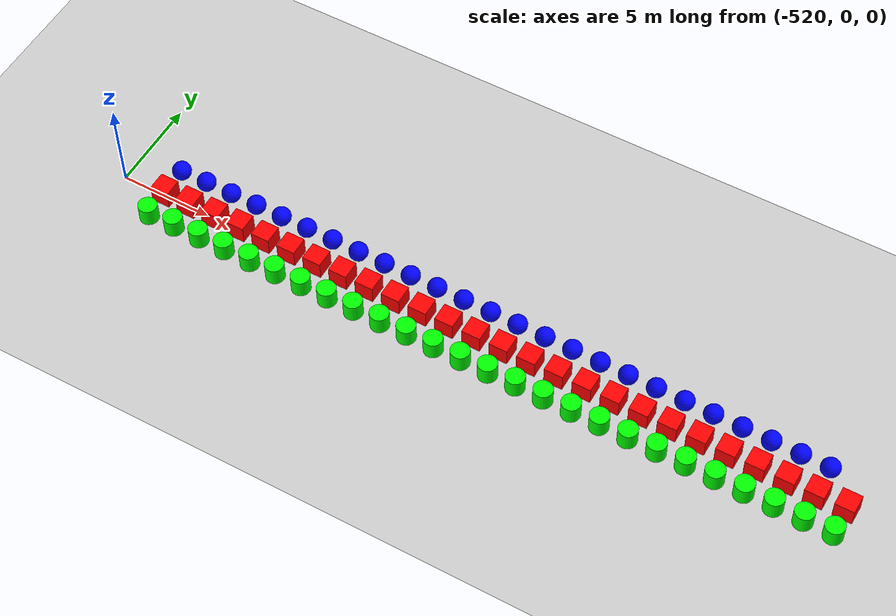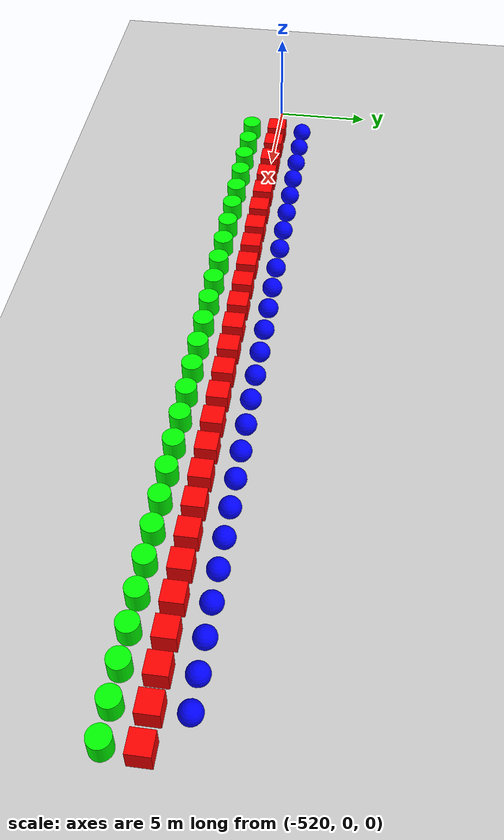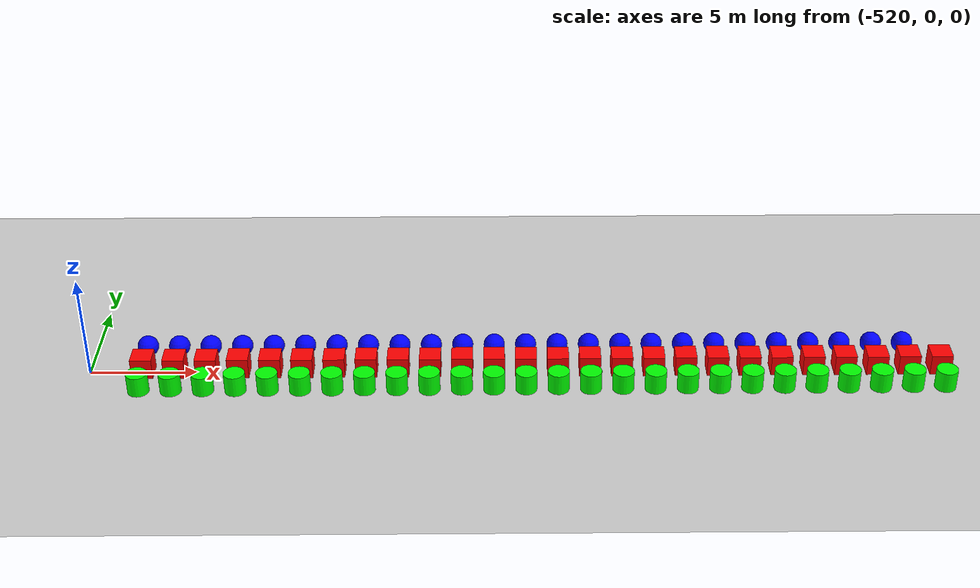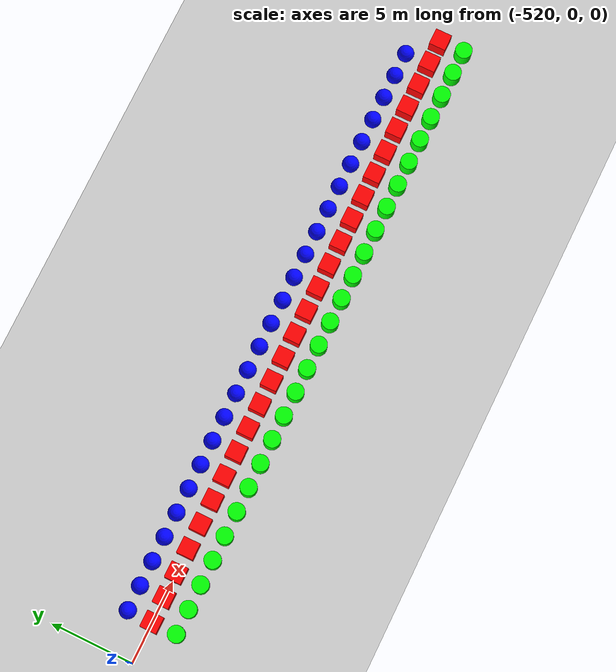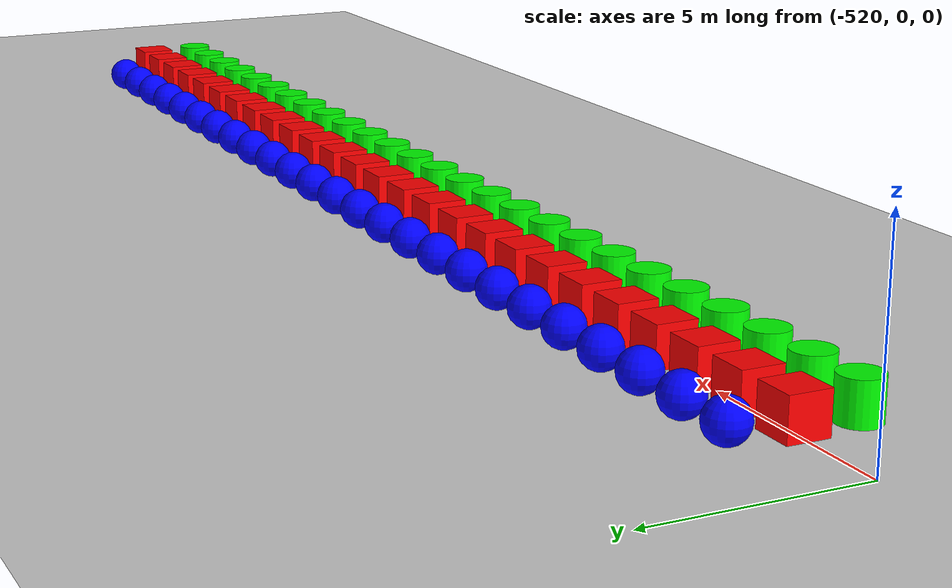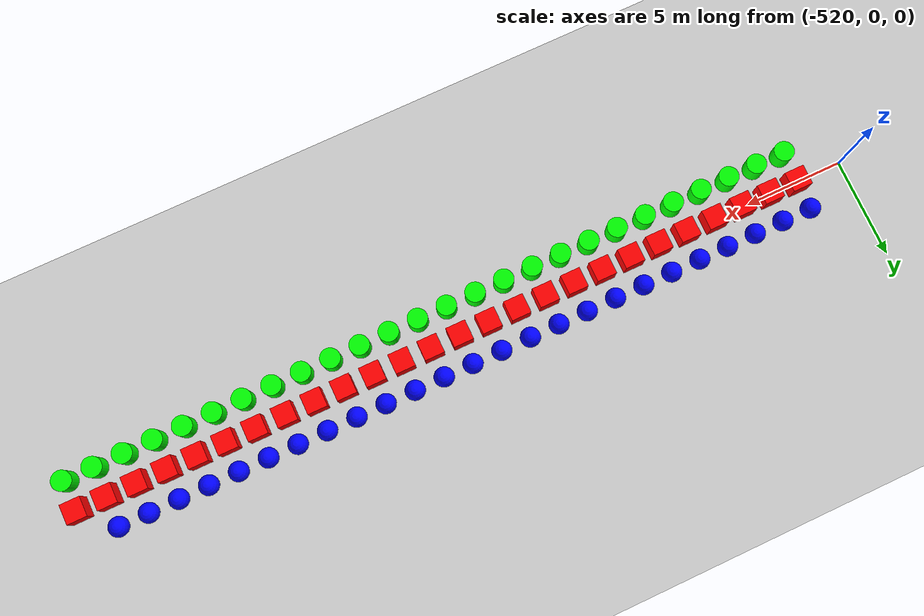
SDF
<sdf version="1.6">
 <world name="shapes">
  <model name="ground_plane">
   <static>true</static>
   <link name="link">
    <collision name="collision">
     <geometry><plane><normal>0 0 1</normal><size>100 100</size></plane></geometry>
    </collision>
    <visual name="visual">
     <geometry><plane><normal>0 0 1</normal><size>100 100</size></plane></geometry>
     <material>
      <ambient>0.8 0.8 0.8 1</ambient>
      <diffuse>0.8 0.8 0.8 1</diffuse>
      <specular>0.8 0.8 0.8 1</specular>
     </material>
    </visual>
   </link>
  </model>
  <model name="box_155">
   <static>false</static>
   <pose>-517.5 0 0.5 0 0 0</pose>
   <link name="box_link">
    <inertial>
     <inertia><ixx>1</ixx><ixy>0</ixy><ixz>0</ixz><iyy>1</iyy><iyz>0</iyz><izz>1</izz></inertia>
     <mass>1.0</mass>
    </inertial>
    <collision name="box_collision"><geometry><box><size>1 1 1</size></box></geometry></collision>
    <visual name="box_visual">
     <geometry><box><size>1 1 1</size></box></geometry>
     <material><ambient>1 0 0 1</ambient><diffuse>1 0 0 1</diffuse><specular>1 0 0 1</specular></material>
    </visual>
   </link>
  </model>
  <model name="cylinder_155">
   <static>false</static>
   <pose>-517.5 -1.5 0.5 0 0 0</pose>
   <link name="cylinder_link">
    <inertial>
     <inertia><ixx>2</ixx><ixy>0</ixy><ixz>0</ixz><iyy>2</iyy><iyz>0</iyz><izz>2</izz></inertia>
     <mass>2.0</mass>
    </inertial>
    <collision name="cylinder_collision">
     <geometry><cylinder><radius>0.5</radius><length>1.0</length></cylinder></geometry>
    </collision>
    <visual name="cylinder_visual">
     <geometry><cylinder><radius>0.5</radius><length>1.0</length></cylinder></geometry>
     <material><ambient>0 1 0 1</ambient><diffuse>0 1 0 1</diffuse><specular>0 1 0 1</specular></material>
    </visual>
   </link>
  </model>
  <model name="sphere_155">
   <static>false</static>
   <pose>-517.5 1.5 0.5 0 0 0</pose>
   <link name="sphere_link">
    <inertial>
     <inertia><ixx>3</ixx><ixy>0</ixy><ixz>0</ixz><iyy>3</iyy><iyz>0</iyz><izz>3</izz></inertia>
     <mass>3.0</mass>
    </inertial>
    <collision name="sphere_collision"><geometry><sphere><radius>0.5</radius></sphere></geometry></collision>
    <visual name="sphere_visual">
     <geometry><sphere><radius>0.5</radius></sphere></geometry>
     <material><ambient>0 0 1 1</ambient><diffuse>0 0 1 1</diffuse><specular>0 0 1 1</specular></material>
    </visual>
   </link>
  </model>
  <model name="box_156">
   <static>false</static>
   <pose>-516.0 0 0.5 0 0 0</pose>
   <link name="box_link">
    <inertial>
     <inertia><ixx>1</ixx><ixy>0</ixy><ixz>0</ixz><iyy>1</iyy><iyz>0</iyz><izz>1</izz></inertia>
     <mass>1.0</mass>
    </inertial>
    <collision name="box_collision"><geometry><box><size>1 1 1</size></box></geometry></collision>
    <visual name="box_visual">
     <geometry><box><size>1 1 1</size></box></geometry>
     <material><ambient>1 0 0 1</ambient><diffuse>1 0 0 1</diffuse><specular>1 0 0 1</specular></material>
    </visual>
   </link>
  </model>
  <model name="cylinder_156">
   <static>false</static>
   <pose>-516.0 -1.5 0.5 0 0 0</pose>
   <link name="cylinder_link">
    <inertial>
     <inertia><ixx>2</ixx><ixy>0</ixy><ixz>0</ixz><iyy>2</iyy><iyz>0</iyz><izz>2</izz></inertia>
     <mass>2.0</mass>
    </inertial>
    <collision name="cylinder_collision">
     <geometry><cylinder><radius>0.5</radius><length>1.0</length></cylinder></geometry>
    </collision>
    <visual name="cylinder_visual">
     <geometry><cylinder><radius>0.5</radius><length>1.0</length></cylinder></geometry>
     <material><ambient>0 1 0 1</ambient><diffuse>0 1 0 1</diffuse><specular>0 1 0 1</specular></material>
    </visual>
   </link>
  </model>
  <model name="sphere_156">
   <static>false</static>
   <pose>-516.0 1.5 0.5 0 0 0</pose>
   <link name="sphere_link">
    <inertial>
     <inertia><ixx>3</ixx><ixy>0</ixy><ixz>0</ixz><iyy>3</iyy><iyz>0</iyz><izz>3</izz></inertia>
     <mass>3.0</mass>
    </inertial>
    <collision name="sphere_collision"><geometry><sphere><radius>0.5</radius></sphere></geometry></collision>
    <visual name="sphere_visual">
     <geometry><sphere><radius>0.5</radius></sphere></geometry>
     <material><ambient>0 0 1 1</ambient><diffuse>0 0 1 1</diffuse><specular>0 0 1 1</specular></material>
    </visual>
   </link>
  </model>
  <model name="box_157">
   <static>false</static>
   <pose>-514.5 0 0.5 0 0 0</pose>
   <link name="box_link">
    <inertial>
     <inertia><ixx>1</ixx><ixy>0</ixy><ixz>0</ixz><iyy>1</iyy><iyz>0</iyz><izz>1</izz></inertia>
     <mass>1.0</mass>
    </inertial>
    <collision name="box_collision"><geometry><box><size>1 1 1</size></box></geometry></collision>
    <visual name="box_visual">
     <geometry><box><size>1 1 1</size></box></geometry>
     <material><ambient>1 0 0 1</ambient><diffuse>1 0 0 1</diffuse><specular>1 0 0 1</specular></material>
    </visual>
   </link>
  </model>
  <model name="cylinder_157">
   <static>false</static>
   <pose>-514.5 -1.5 0.5 0 0 0</pose>
   <link name="cylinder_link">
    <inertial>
     <inertia><ixx>2</ixx><ixy>0</ixy><ixz>0</ixz><iyy>2</iyy><iyz>0</iyz><izz>2</izz></inertia>
     <mass>2.0</mass>
    </inertial>
    <collision name="cylinder_collision">
     <geometry><cylinder><radius>0.5</radius><length>1.0</length></cylinder></geometry>
    </collision>
    <visual name="cylinder_visual">
     <geometry><cylinder><radius>0.5</radius><length>1.0</length></cylinder></geometry>
     <material><ambient>0 1 0 1</ambient><diffuse>0 1 0 1</diffuse><specular>0 1 0 1</specular></material>
    </visual>
   </link>
  </model>
  <model name="sphere_157">
   <static>false</static>
   <pose>-514.5 1.5 0.5 0 0 0</pose>
   <link name="sphere_link">
    <inertial>
     <inertia><ixx>3</ixx><ixy>0</ixy><ixz>0</ixz><iyy>3</iyy><iyz>0</iyz><izz>3</izz></inertia>
     <mass>3.0</mass>
    </inertial>
    <collision name="sphere_collision"><geometry><sphere><radius>0.5</radius></sphere></geometry></collision>
    <visual name="sphere_visual">
     <geometry><sphere><radius>0.5</radius></sphere></geometry>
     <material><ambient>0 0 1 1</ambient><diffuse>0 0 1 1</diffuse><specular>0 0 1 1</specular></material>
    </visual>
   </link>
  </model>
  <model name="box_158">
   <static>false</static>
   <pose>-513.0 0 0.5 0 0 0</pose>
   <link name="box_link">
    <inertial>
     <inertia><ixx>1</ixx><ixy>0</ixy><ixz>0</ixz><iyy>1</iyy><iyz>0</iyz><izz>1</izz></inertia>
     <mass>1.0</mass>
    </inertial>
    <collision name="box_collision"><geometry><box><size>1 1 1</size></box></geometry></collision>
    <visual name="box_visual">
     <geometry><box><size>1 1 1</size></box></geometry>
     <material><ambient>1 0 0 1</ambient><diffuse>1 0 0 1</diffuse><specular>1 0 0 1</specular></material>
    </visual>
   </link>
  </model>
  <model name="cylinder_158">
   <static>false</static>
   <pose>-513.0 -1.5 0.5 0 0 0</pose>
   <link name="cylinder_link">
    <inertial>
     <inertia><ixx>2</ixx><ixy>0</ixy><ixz>0</ixz><iyy>2</iyy><iyz>0</iyz><izz>2</izz></inertia>
     <mass>2.0</mass>
    </inertial>
    <collision name="cylinder_collision">
     <geometry><cylinder><radius>0.5</radius><length>1.0</length></cylinder></geometry>
    </collision>
    <visual name="cylinder_visual">
     <geometry><cylinder><radius>0.5</radius><length>1.0</length></cylinder></geometry>
     <material><ambient>0 1 0 1</ambient><diffuse>0 1 0 1</diffuse><specular>0 1 0 1</specular></material>
    </visual>
   </link>
  </model>
  <model name="sphere_158">
   <static>false</static>
   <pose>-513.0 1.5 0.5 0 0 0</pose>
   <link name="sphere_link">
    <inertial>
     <inertia><ixx>3</ixx><ixy>0</ixy><ixz>0</ixz><iyy>3</iyy><iyz>0</iyz><izz>3</izz></inertia>
     <mass>3.0</mass>
    </inertial>
    <collision name="sphere_collision"><geometry><sphere><radius>0.5</radius></sphere></geometry></collision>
    <visual name="sphere_visual">
     <geometry><sphere><radius>0.5</radius></sphere></geometry>
     <material><ambient>0 0 1 1</ambient><diffuse>0 0 1 1</diffuse><specular>0 0 1 1</specular></material>
    </visual>
   </link>
  </model>
  <model name="box_159">
   <static>false</static>
   <pose>-511.5 0 0.5 0 0 0</pose>
   <link name="box_link">
    <inertial>
     <inertia><ixx>1</ixx><ixy>0</ixy><ixz>0</ixz><iyy>1</iyy><iyz>0</iyz><izz>1</izz></inertia>
     <mass>1.0</mass>
    </inertial>
    <collision name="box_collision"><geometry><box><size>1 1 1</size></box></geometry></collision>
    <visual name="box_visual">
     <geometry><box><size>1 1 1</size></box></geometry>
     <material><ambient>1 0 0 1</ambient><diffuse>1 0 0 1</diffuse><specular>1 0 0 1</specular></material>
    </visual>
   </link>
  </model>
  <model name="cylinder_159">
   <static>false</static>
   <pose>-511.5 -1.5 0.5 0 0 0</pose>
   <link name="cylinder_link">
    <inertial>
     <inertia><ixx>2</ixx><ixy>0</ixy><ixz>0</ixz><iyy>2</iyy><iyz>0</iyz><izz>2</izz></inertia>
     <mass>2.0</mass>
    </inertial>
    <collision name="cylinder_collision">
     <geometry><cylinder><radius>0.5</radius><length>1.0</length></cylinder></geometry>
    </collision>
    <visual name="cylinder_visual">
     <geometry><cylinder><radius>0.5</radius><length>1.0</length></cylinder></geometry>
     <material><ambient>0 1 0 1</ambient><diffuse>0 1 0 1</diffuse><specular>0 1 0 1</specular></material>
    </visual>
   </link>
  </model>
  <model name="sphere_159">
   <static>false</static>
   <pose>-511.5 1.5 0.5 0 0 0</pose>
   <link name="sphere_link">
    <inertial>
     <inertia><ixx>3</ixx><ixy>0</ixy><ixz>0</ixz><iyy>3</iyy><iyz>0</iyz><izz>3</izz></inertia>
     <mass>3.0</mass>
    </inertial>
    <collision name="sphere_collision"><geometry><sphere><radius>0.5</radius></sphere></geometry></collision>
    <visual name="sphere_visual">
     <geometry><sphere><radius>0.5</radius></sphere></geometry>
     <material><ambient>0 0 1 1</ambient><diffuse>0 0 1 1</diffuse><specular>0 0 1 1</specular></material>
    </visual>
   </link>
  </model>
  <model name="box_160">
   <static>false</static>
   <pose>-510.0 0 0.5 0 0 0</pose>
   <link name="box_link">
    <inertial>
     <inertia><ixx>1</ixx><ixy>0</ixy><ixz>0</ixz><iyy>1</iyy><iyz>0</iyz><izz>1</izz></inertia>
     <mass>1.0</mass>
    </inertial>
    <collision name="box_collision"><geometry><box><size>1 1 1</size></box></geometry></collision>
    <visual name="box_visual">
     <geometry><box><size>1 1 1</size></box></geometry>
     <material><ambient>1 0 0 1</ambient><diffuse>1 0 0 1</diffuse><specular>1 0 0 1</specular></material>
    </visual>
   </link>
  </model>
  <model name="cylinder_160">
   <static>false</static>
   <pose>-510.0 -1.5 0.5 0 0 0</pose>
   <link name="cylinder_link">
    <inertial>
     <inertia><ixx>2</ixx><ixy>0</ixy><ixz>0</ixz><iyy>2</iyy><iyz>0</iyz><izz>2</izz></inertia>
     <mass>2.0</mass>
    </inertial>
    <collision name="cylinder_collision">
     <geometry><cylinder><radius>0.5</radius><length>1.0</length></cylinder></geometry>
    </collision>
    <visual name="cylinder_visual">
     <geometry><cylinder><radius>0.5</radius><length>1.0</length></cylinder></geometry>
     <material><ambient>0 1 0 1</ambient><diffuse>0 1 0 1</diffuse><specular>0 1 0 1</specular></material>
    </visual>
   </link>
  </model>
  <model name="sphere_160">
   <static>false</static>
   <pose>-510.0 1.5 0.5 0 0 0</pose>
   <link name="sphere_link">
    <inertial>
     <inertia><ixx>3</ixx><ixy>0</ixy><ixz>0</ixz><iyy>3</iyy><iyz>0</iyz><izz>3</izz></inertia>
     <mass>3.0</mass>
    </inertial>
    <collision name="sphere_collision"><geometry><sphere><radius>0.5</radius></sphere></geometry></collision>
    <visual name="sphere_visual">
     <geometry><sphere><radius>0.5</radius></sphere></geometry>
     <material><ambient>0 0 1 1</ambient><diffuse>0 0 1 1</diffuse><specular>0 0 1 1</specular></material>
    </visual>
   </link>
  </model>
  <model name="box_161">
   <static>false</static>
   <pose>-508.5 0 0.5 0 0 0</pose>
   <link name="box_link">
    <inertial>
     <inertia><ixx>1</ixx><ixy>0</ixy><ixz>0</ixz><iyy>1</iyy><iyz>0</iyz><izz>1</izz></inertia>
     <mass>1.0</mass>
    </inertial>
    <collision name="box_collision"><geometry><box><size>1 1 1</size></box></geometry></collision>
    <visual name="box_visual">
     <geometry><box><size>1 1 1</size></box></geometry>
     <material><ambient>1 0 0 1</ambient><diffuse>1 0 0 1</diffuse><specular>1 0 0 1</specular></material>
    </visual>
   </link>
  </model>
  <model name="cylinder_161">
   <static>false</static>
   <pose>-508.5 -1.5 0.5 0 0 0</pose>
   <link name="cylinder_link">
    <inertial>
     <inertia><ixx>2</ixx><ixy>0</ixy><ixz>0</ixz><iyy>2</iyy><iyz>0</iyz><izz>2</izz></inertia>
     <mass>2.0</mass>
    </inertial>
    <collision name="cylinder_collision">
     <geometry><cylinder><radius>0.5</radius><length>1.0</length></cylinder></geometry>
    </collision>
    <visual name="cylinder_visual">
     <geometry><cylinder><radius>0.5</radius><length>1.0</length></cylinder></geometry>
     <material><ambient>0 1 0 1</ambient><diffuse>0 1 0 1</diffuse><specular>0 1 0 1</specular></material>
    </visual>
   </link>
  </model>
  <model name="sphere_161">
   <static>false</static>
   <pose>-508.5 1.5 0.5 0 0 0</pose>
   <link name="sphere_link">
    <inertial>
     <inertia><ixx>3</ixx><ixy>0</ixy><ixz>0</ixz><iyy>3</iyy><iyz>0</iyz><izz>3</izz></inertia>
     <mass>3.0</mass>
    </inertial>
    <collision name="sphere_collision"><geometry><sphere><radius>0.5</radius></sphere></geometry></collision>
    <visual name="sphere_visual">
     <geometry><sphere><radius>0.5</radius></sphere></geometry>
     <material><ambient>0 0 1 1</ambient><diffuse>0 0 1 1</diffuse><specular>0 0 1 1</specular></material>
    </visual>
   </link>
  </model>
  <model name="box_162">
   <static>false</static>
   <pose>-507.0 0 0.5 0 0 0</pose>
   <link name="box_link">
    <inertial>
     <inertia><ixx>1</ixx><ixy>0</ixy><ixz>0</ixz><iyy>1</iyy><iyz>0</iyz><izz>1</izz></inertia>
     <mass>1.0</mass>
    </inertial>
    <collision name="box_collision"><geometry><box><size>1 1 1</size></box></geometry></collision>
    <visual name="box_visual">
     <geometry><box><size>1 1 1</size></box></geometry>
     <material><ambient>1 0 0 1</ambient><diffuse>1 0 0 1</diffuse><specular>1 0 0 1</specular></material>
    </visual>
   </link>
  </model>
  <model name="cylinder_162">
   <static>false</static>
   <pose>-507.0 -1.5 0.5 0 0 0</pose>
   <link name="cylinder_link">
    <inertial>
     <inertia><ixx>2</ixx><ixy>0</ixy><ixz>0</ixz><iyy>2</iyy><iyz>0</iyz><izz>2</izz></inertia>
     <mass>2.0</mass>
    </inertial>
    <collision name="cylinder_collision">
     <geometry><cylinder><radius>0.5</radius><length>1.0</length></cylinder></geometry>
    </collision>
    <visual name="cylinder_visual">
     <geometry><cylinder><radius>0.5</radius><length>1.0</length></cylinder></geometry>
     <material><ambient>0 1 0 1</ambient><diffuse>0 1 0 1</diffuse><specular>0 1 0 1</specular></material>
    </visual>
   </link>
  </model>
  <model name="sphere_162">
   <static>false</static>
   <pose>-507.0 1.5 0.5 0 0 0</pose>
   <link name="sphere_link">
    <inertial>
     <inertia><ixx>3</ixx><ixy>0</ixy><ixz>0</ixz><iyy>3</iyy><iyz>0</iyz><izz>3</izz></inertia>
     <mass>3.0</mass>
    </inertial>
    <collision name="sphere_collision"><geometry><sphere><radius>0.5</radius></sphere></geometry></collision>
    <visual name="sphere_visual">
     <geometry><sphere><radius>0.5</radius></sphere></geometry>
     <material><ambient>0 0 1 1</ambient><diffuse>0 0 1 1</diffuse><specular>0 0 1 1</specular></material>
    </visual>
   </link>
  </model>
  <model name="box_163">
   <static>false</static>
   <pose>-505.5 0 0.5 0 0 0</pose>
   <link name="box_link">
    <inertial>
     <inertia><ixx>1</ixx><ixy>0</ixy><ixz>0</ixz><iyy>1</iyy><iyz>0</iyz><izz>1</izz></inertia>
     <mass>1.0</mass>
    </inertial>
    <collision name="box_collision"><geometry><box><size>1 1 1</size></box></geometry></collision>
    <visual name="box_visual">
     <geometry><box><size>1 1 1</size></box></geometry>
     <material><ambient>1 0 0 1</ambient><diffuse>1 0 0 1</diffuse><specular>1 0 0 1</specular></material>
    </visual>
   </link>
  </model>
  <model name="cylinder_163">
   <static>false</static>
   <pose>-505.5 -1.5 0.5 0 0 0</pose>
   <link name="cylinder_link">
    <inertial>
     <inertia><ixx>2</ixx><ixy>0</ixy><ixz>0</ixz><iyy>2</iyy><iyz>0</iyz><izz>2</izz></inertia>
     <mass>2.0</mass>
    </inertial>
    <collision name="cylinder_collision">
     <geometry><cylinder><radius>0.5</radius><length>1.0</length></cylinder></geometry>
    </collision>
    <visual name="cylinder_visual">
     <geometry><cylinder><radius>0.5</radius><length>1.0</length></cylinder></geometry>
     <material><ambient>0 1 0 1</ambient><diffuse>0 1 0 1</diffuse><specular>0 1 0 1</specular></material>
    </visual>
   </link>
  </model>
  <model name="sphere_163">
   <static>false</static>
   <pose>-505.5 1.5 0.5 0 0 0</pose>
   <link name="sphere_link">
    <inertial>
     <inertia><ixx>3</ixx><ixy>0</ixy><ixz>0</ixz><iyy>3</iyy><iyz>0</iyz><izz>3</izz></inertia>
     <mass>3.0</mass>
    </inertial>
    <collision name="sphere_collision"><geometry><sphere><radius>0.5</radius></sphere></geometry></collision>
    <visual name="sphere_visual">
     <geometry><sphere><radius>0.5</radius></sphere></geometry>
     <material><ambient>0 0 1 1</ambient><diffuse>0 0 1 1</diffuse><specular>0 0 1 1</specular></material>
    </visual>
   </link>
  </model>
  <model name="box_164">
   <static>false</static>
   <pose>-504.0 0 0.5 0 0 0</pose>
   <link name="box_link">
    <inertial>
     <inertia><ixx>1</ixx><ixy>0</ixy><ixz>0</ixz><iyy>1</iyy><iyz>0</iyz><izz>1</izz></inertia>
     <mass>1.0</mass>
    </inertial>
    <collision name="box_collision"><geometry><box><size>1 1 1</size></box></geometry></collision>
    <visual name="box_visual">
     <geometry><box><size>1 1 1</size></box></geometry>
     <material><ambient>1 0 0 1</ambient><diffuse>1 0 0 1</diffuse><specular>1 0 0 1</specular></material>
    </visual>
   </link>
  </model>
  <model name="cylinder_164">
   <static>false</static>
   <pose>-504.0 -1.5 0.5 0 0 0</pose>
   <link name="cylinder_link">
    <inertial>
     <inertia><ixx>2</ixx><ixy>0</ixy><ixz>0</ixz><iyy>2</iyy><iyz>0</iyz><izz>2</izz></inertia>
     <mass>2.0</mass>
    </inertial>
    <collision name="cylinder_collision">
     <geometry><cylinder><radius>0.5</radius><length>1.0</length></cylinder></geometry>
    </collision>
    <visual name="cylinder_visual">
     <geometry><cylinder><radius>0.5</radius><length>1.0</length></cylinder></geometry>
     <material><ambient>0 1 0 1</ambient><diffuse>0 1 0 1</diffuse><specular>0 1 0 1</specular></material>
    </visual>
   </link>
  </model>
  <model name="sphere_164">
   <static>false</static>
   <pose>-504.0 1.5 0.5 0 0 0</pose>
   <link name="sphere_link">
    <inertial>
     <inertia><ixx>3</ixx><ixy>0</ixy><ixz>0</ixz><iyy>3</iyy><iyz>0</iyz><izz>3</izz></inertia>
     <mass>3.0</mass>
    </inertial>
    <collision name="sphere_collision"><geometry><sphere><radius>0.5</radius></sphere></geometry></collision>
    <visual name="sphere_visual">
     <geometry><sphere><radius>0.5</radius></sphere></geometry>
     <material><ambient>0 0 1 1</ambient><diffuse>0 0 1 1</diffuse><specular>0 0 1 1</specular></material>
    </visual>
   </link>
  </model>
  <model name="box_165">
   <static>false</static>
   <pose>-502.5 0 0.5 0 0 0</pose>
   <link name="box_link">
    <inertial>
     <inertia><ixx>1</ixx><ixy>0</ixy><ixz>0</ixz><iyy>1</iyy><iyz>0</iyz><izz>1</izz></inertia>
     <mass>1.0</mass>
    </inertial>
    <collision name="box_collision"><geometry><box><size>1 1 1</size></box></geometry></collision>
    <visual name="box_visual">
     <geometry><box><size>1 1 1</size></box></geometry>
     <material><ambient>1 0 0 1</ambient><diffuse>1 0 0 1</diffuse><specular>1 0 0 1</specular></material>
    </visual>
   </link>
  </model>
  <model name="cylinder_165">
   <static>false</static>
   <pose>-502.5 -1.5 0.5 0 0 0</pose>
   <link name="cylinder_link">
    <inertial>
     <inertia><ixx>2</ixx><ixy>0</ixy><ixz>0</ixz><iyy>2</iyy><iyz>0</iyz><izz>2</izz></inertia>
     <mass>2.0</mass>
    </inertial>
    <collision name="cylinder_collision">
     <geometry><cylinder><radius>0.5</radius><length>1.0</length></cylinder></geometry>
    </collision>
    <visual name="cylinder_visual">
     <geometry><cylinder><radius>0.5</radius><length>1.0</length></cylinder></geometry>
     <material><ambient>0 1 0 1</ambient><diffuse>0 1 0 1</diffuse><specular>0 1 0 1</specular></material>
    </visual>
   </link>
  </model>
  <model name="sphere_165">
   <static>false</static>
   <pose>-502.5 1.5 0.5 0 0 0</pose>
   <link name="sphere_link">
    <inertial>
     <inertia><ixx>3</ixx><ixy>0</ixy><ixz>0</ixz><iyy>3</iyy><iyz>0</iyz><izz>3</izz></inertia>
     <mass>3.0</mass>
    </inertial>
    <collision name="sphere_collision"><geometry><sphere><radius>0.5</radius></sphere></geometry></collision>
    <visual name="sphere_visual">
     <geometry><sphere><radius>0.5</radius></sphere></geometry>
     <material><ambient>0 0 1 1</ambient><diffuse>0 0 1 1</diffuse><specular>0 0 1 1</specular></material>
    </visual>
   </link>
  </model>
  <model name="box_166">
   <static>false</static>
   <pose>-501.0 0 0.5 0 0 0</pose>
   <link name="box_link">
    <inertial>
     <inertia><ixx>1</ixx><ixy>0</ixy><ixz>0</ixz><iyy>1</iyy><iyz>0</iyz><izz>1</izz></inertia>
     <mass>1.0</mass>
    </inertial>
    <collision name="box_collision"><geometry><box><size>1 1 1</size></box></geometry></collision>
    <visual name="box_visual">
     <geometry><box><size>1 1 1</size></box></geometry>
     <material><ambient>1 0 0 1</ambient><diffuse>1 0 0 1</diffuse><specular>1 0 0 1</specular></material>
    </visual>
   </link>
  </model>
  <model name="cylinder_166">
   <static>false</static>
   <pose>-501.0 -1.5 0.5 0 0 0</pose>
   <link name="cylinder_link">
    <inertial>
     <inertia><ixx>2</ixx><ixy>0</ixy><ixz>0</ixz><iyy>2</iyy><iyz>0</iyz><izz>2</izz></inertia>
     <mass>2.0</mass>
    </inertial>
    <collision name="cylinder_collision">
     <geometry><cylinder><radius>0.5</radius><length>1.0</length></cylinder></geometry>
    </collision>
    <visual name="cylinder_visual">
     <geometry><cylinder><radius>0.5</radius><length>1.0</length></cylinder></geometry>
     <material><ambient>0 1 0 1</ambient><diffuse>0 1 0 1</diffuse><specular>0 1 0 1</specular></material>
    </visual>
   </link>
  </model>
  <model name="sphere_166">
   <static>false</static>
   <pose>-501.0 1.5 0.5 0 0 0</pose>
   <link name="sphere_link">
    <inertial>
     <inertia><ixx>3</ixx><ixy>0</ixy><ixz>0</ixz><iyy>3</iyy><iyz>0</iyz><izz>3</izz></inertia>
     <mass>3.0</mass>
    </inertial>
    <collision name="sphere_collision"><geometry><sphere><radius>0.5</radius></sphere></geometry></collision>
    <visual name="sphere_visual">
     <geometry><sphere><radius>0.5</radius></sphere></geometry>
     <material><ambient>0 0 1 1</ambient><diffuse>0 0 1 1</diffuse><specular>0 0 1 1</specular></material>
    </visual>
   </link>
  </model>
  <model name="box_167">
   <static>false</static>
   <pose>-499.5 0 0.5 0 0 0</pose>
   <link name="box_link">
    <inertial>
     <inertia><ixx>1</ixx><ixy>0</ixy><ixz>0</ixz><iyy>1</iyy><iyz>0</iyz><izz>1</izz></inertia>
     <mass>1.0</mass>
    </inertial>
    <collision name="box_collision"><geometry><box><size>1 1 1</size></box></geometry></collision>
    <visual name="box_visual">
     <geometry><box><size>1 1 1</size></box></geometry>
     <material><ambient>1 0 0 1</ambient><diffuse>1 0 0 1</diffuse><specular>1 0 0 1</specular></material>
    </visual>
   </link>
  </model>
  <model name="cylinder_167">
   <static>false</static>
   <pose>-499.5 -1.5 0.5 0 0 0</pose>
   <link name="cylinder_link">
    <inertial>
     <inertia><ixx>2</ixx><ixy>0</ixy><ixz>0</ixz><iyy>2</iyy><iyz>0</iyz><izz>2</izz></inertia>
     <mass>2.0</mass>
    </inertial>
    <collision name="cylinder_collision">
     <geometry><cylinder><radius>0.5</radius><length>1.0</length></cylinder></geometry>
    </collision>
    <visual name="cylinder_visual">
     <geometry><cylinder><radius>0.5</radius><length>1.0</length></cylinder></geometry>
     <material><ambient>0 1 0 1</ambient><diffuse>0 1 0 1</diffuse><specular>0 1 0 1</specular></material>
    </visual>
   </link>
  </model>
  <model name="sphere_167">
   <static>false</static>
   <pose>-499.5 1.5 0.5 0 0 0</pose>
   <link name="sphere_link">
    <inertial>
     <inertia><ixx>3</ixx><ixy>0</ixy><ixz>0</ixz><iyy>3</iyy><iyz>0</iyz><izz>3</izz></inertia>
     <mass>3.0</mass>
    </inertial>
    <collision name="sphere_collision"><geometry><sphere><radius>0.5</radius></sphere></geometry></collision>
    <visual name="sphere_visual">
     <geometry><sphere><radius>0.5</radius></sphere></geometry>
     <material><ambient>0 0 1 1</ambient><diffuse>0 0 1 1</diffuse><specular>0 0 1 1</specular></material>
    </visual>
   </link>
  </model>
  <model name="box_168">
   <static>false</static>
   <pose>-498.0 0 0.5 0 0 0</pose>
   <link name="box_link">
    <inertial>
     <inertia><ixx>1</ixx><ixy>0</ixy><ixz>0</ixz><iyy>1</iyy><iyz>0</iyz><izz>1</izz></inertia>
     <mass>1.0</mass>
    </inertial>
    <collision name="box_collision"><geometry><box><size>1 1 1</size></box></geometry></collision>
    <visual name="box_visual">
     <geometry><box><size>1 1 1</size></box></geometry>
     <material><ambient>1 0 0 1</ambient><diffuse>1 0 0 1</diffuse><specular>1 0 0 1</specular></material>
    </visual>
   </link>
  </model>
  <model name="cylinder_168">
   <static>false</static>
   <pose>-498.0 -1.5 0.5 0 0 0</pose>
   <link name="cylinder_link">
    <inertial>
     <inertia><ixx>2</ixx><ixy>0</ixy><ixz>0</ixz><iyy>2</iyy><iyz>0</iyz><izz>2</izz></inertia>
     <mass>2.0</mass>
    </inertial>
    <collision name="cylinder_collision">
     <geometry><cylinder><radius>0.5</radius><length>1.0</length></cylinder></geometry>
    </collision>
    <visual name="cylinder_visual">
     <geometry><cylinder><radius>0.5</radius><length>1.0</length></cylinder></geometry>
     <material><ambient>0 1 0 1</ambient><diffuse>0 1 0 1</diffuse><specular>0 1 0 1</specular></material>
    </visual>
   </link>
  </model>
  <model name="sphere_168">
   <static>false</static>
   <pose>-498.0 1.5 0.5 0 0 0</pose>
   <link name="sphere_link">
    <inertial>
     <inertia><ixx>3</ixx><ixy>0</ixy><ixz>0</ixz><iyy>3</iyy><iyz>0</iyz><izz>3</izz></inertia>
     <mass>3.0</mass>
    </inertial>
    <collision name="sphere_collision"><geometry><sphere><radius>0.5</radius></sphere></geometry></collision>
    <visual name="sphere_visual">
     <geometry><sphere><radius>0.5</radius></sphere></geometry>
     <material><ambient>0 0 1 1</ambient><diffuse>0 0 1 1</diffuse><specular>0 0 1 1</specular></material>
    </visual>
   </link>
  </model>
  <model name="box_169">
   <static>false</static>
   <pose>-496.5 0 0.5 0 0 0</pose>
   <link name="box_link">
    <inertial>
     <inertia><ixx>1</ixx><ixy>0</ixy><ixz>0</ixz><iyy>1</iyy><iyz>0</iyz><izz>1</izz></inertia>
     <mass>1.0</mass>
    </inertial>
    <collision name="box_collision"><geometry><box><size>1 1 1</size></box></geometry></collision>
    <visual name="box_visual">
     <geometry><box><size>1 1 1</size></box></geometry>
     <material><ambient>1 0 0 1</ambient><diffuse>1 0 0 1</diffuse><specular>1 0 0 1</specular></material>
    </visual>
   </link>
  </model>
  <model name="cylinder_169">
   <static>false</static>
   <pose>-496.5 -1.5 0.5 0 0 0</pose>
   <link name="cylinder_link">
    <inertial>
     <inertia><ixx>2</ixx><ixy>0</ixy><ixz>0</ixz><iyy>2</iyy><iyz>0</iyz><izz>2</izz></inertia>
     <mass>2.0</mass>
    </inertial>
    <collision name="cylinder_collision">
     <geometry><cylinder><radius>0.5</radius><length>1.0</length></cylinder></geometry>
    </collision>
    <visual name="cylinder_visual">
     <geometry><cylinder><radius>0.5</radius><length>1.0</length></cylinder></geometry>
     <material><ambient>0 1 0 1</ambient><diffuse>0 1 0 1</diffuse><specular>0 1 0 1</specular></material>
    </visual>
   </link>
  </model>
  <model name="sphere_169">
   <static>false</static>
   <pose>-496.5 1.5 0.5 0 0 0</pose>
   <link name="sphere_link">
    <inertial>
     <inertia><ixx>3</ixx><ixy>0</ixy><ixz>0</ixz><iyy>3</iyy><iyz>0</iyz><izz>3</izz></inertia>
     <mass>3.0</mass>
    </inertial>
    <collision name="sphere_collision"><geometry><sphere><radius>0.5</radius></sphere></geometry></collision>
    <visual name="sphere_visual">
     <geometry><sphere><radius>0.5</radius></sphere></geometry>
     <material><ambient>0 0 1 1</ambient><diffuse>0 0 1 1</diffuse><specular>0 0 1 1</specular></material>
    </visual>
   </link>
  </model>
  <model name="box_170">
   <static>false</static>
   <pose>-495.0 0 0.5 0 0 0</pose>
   <link name="box_link">
    <inertial>
     <inertia><ixx>1</ixx><ixy>0</ixy><ixz>0</ixz><iyy>1</iyy><iyz>0</iyz><izz>1</izz></inertia>
     <mass>1.0</mass>
    </inertial>
    <collision name="box_collision"><geometry><box><size>1 1 1</size></box></geometry></collision>
    <visual name="box_visual">
     <geometry><box><size>1 1 1</size></box></geometry>
     <material><ambient>1 0 0 1</ambient><diffuse>1 0 0 1</diffuse><specular>1 0 0 1</specular></material>
    </visual>
   </link>
  </model>
  <model name="cylinder_170">
   <static>false</static>
   <pose>-495.0 -1.5 0.5 0 0 0</pose>
   <link name="cylinder_link">
    <inertial>
     <inertia><ixx>2</ixx><ixy>0</ixy><ixz>0</ixz><iyy>2</iyy><iyz>0</iyz><izz>2</izz></inertia>
     <mass>2.0</mass>
    </inertial>
    <collision name="cylinder_collision">
     <geometry><cylinder><radius>0.5</radius><length>1.0</length></cylinder></geometry>
    </collision>
    <visual name="cylinder_visual">
     <geometry><cylinder><radius>0.5</radius><length>1.0</length></cylinder></geometry>
     <material><ambient>0 1 0 1</ambient><diffuse>0 1 0 1</diffuse><specular>0 1 0 1</specular></material>
    </visual>
   </link>
  </model>
  <model name="sphere_170">
   <static>false</static>
   <pose>-495.0 1.5 0.5 0 0 0</pose>
   <link name="sphere_link">
    <inertial>
     <inertia><ixx>3</ixx><ixy>0</ixy><ixz>0</ixz><iyy>3</iyy><iyz>0</iyz><izz>3</izz></inertia>
     <mass>3.0</mass>
    </inertial>
    <collision name="sphere_collision"><geometry><sphere><radius>0.5</radius></sphere></geometry></collision>
    <visual name="sphere_visual">
     <geometry><sphere><radius>0.5</radius></sphere></geometry>
     <material><ambient>0 0 1 1</ambient><diffuse>0 0 1 1</diffuse><specular>0 0 1 1</specular></material>
    </visual>
   </link>
  </model>
  <model name="box_171">
   <static>false</static>
   <pose>-493.5 0 0.5 0 0 0</pose>
   <link name="box_link">
    <inertial>
     <inertia><ixx>1</ixx><ixy>0</ixy><ixz>0</ixz><iyy>1</iyy><iyz>0</iyz><izz>1</izz></inertia>
     <mass>1.0</mass>
    </inertial>
    <collision name="box_collision"><geometry><box><size>1 1 1</size></box></geometry></collision>
    <visual name="box_visual">
     <geometry><box><size>1 1 1</size></box></geometry>
     <material><ambient>1 0 0 1</ambient><diffuse>1 0 0 1</diffuse><specular>1 0 0 1</specular></material>
    </visual>
   </link>
  </model>
  <model name="cylinder_171">
   <static>false</static>
   <pose>-493.5 -1.5 0.5 0 0 0</pose>
   <link name="cylinder_link">
    <inertial>
     <inertia><ixx>2</ixx><ixy>0</ixy><ixz>0</ixz><iyy>2</iyy><iyz>0</iyz><izz>2</izz></inertia>
     <mass>2.0</mass>
    </inertial>
    <collision name="cylinder_collision">
     <geometry><cylinder><radius>0.5</radius><length>1.0</length></cylinder></geometry>
    </collision>
    <visual name="cylinder_visual">
     <geometry><cylinder><radius>0.5</radius><length>1.0</length></cylinder></geometry>
     <material><ambient>0 1 0 1</ambient><diffuse>0 1 0 1</diffuse><specular>0 1 0 1</specular></material>
    </visual>
   </link>
  </model>
  <model name="sphere_171">
   <static>false</static>
   <pose>-493.5 1.5 0.5 0 0 0</pose>
   <link name="sphere_link">
    <inertial>
     <inertia><ixx>3</ixx><ixy>0</ixy><ixz>0</ixz><iyy>3</iyy><iyz>0</iyz><izz>3</izz></inertia>
     <mass>3.0</mass>
    </inertial>
    <collision name="sphere_collision"><geometry><sphere><radius>0.5</radius></sphere></geometry></collision>
    <visual name="sphere_visual">
     <geometry><sphere><radius>0.5</radius></sphere></geometry>
     <material><ambient>0 0 1 1</ambient><diffuse>0 0 1 1</diffuse><specular>0 0 1 1</specular></material>
    </visual>
   </link>
  </model>
  <model name="box_172">
   <static>false</static>
   <pose>-492.0 0 0.5 0 0 0</pose>
   <link name="box_link">
    <inertial>
     <inertia><ixx>1</ixx><ixy>0</ixy><ixz>0</ixz><iyy>1</iyy><iyz>0</iyz><izz>1</izz></inertia>
     <mass>1.0</mass>
    </inertial>
    <collision name="box_collision"><geometry><box><size>1 1 1</size></box></geometry></collision>
    <visual name="box_visual">
     <geometry><box><size>1 1 1</size></box></geometry>
     <material><ambient>1 0 0 1</ambient><diffuse>1 0 0 1</diffuse><specular>1 0 0 1</specular></material>
    </visual>
   </link>
  </model>
  <model name="cylinder_172">
   <static>false</static>
   <pose>-492.0 -1.5 0.5 0 0 0</pose>
   <link name="cylinder_link">
    <inertial>
     <inertia><ixx>2</ixx><ixy>0</ixy><ixz>0</ixz><iyy>2</iyy><iyz>0</iyz><izz>2</izz></inertia>
     <mass>2.0</mass>
    </inertial>
    <collision name="cylinder_collision">
     <geometry><cylinder><radius>0.5</radius><length>1.0</length></cylinder></geometry>
    </collision>
    <visual name="cylinder_visual">
     <geometry><cylinder><radius>0.5</radius><length>1.0</length></cylinder></geometry>
     <material><ambient>0 1 0 1</ambient><diffuse>0 1 0 1</diffuse><specular>0 1 0 1</specular></material>
    </visual>
   </link>
  </model>
  <model name="sphere_172">
   <static>false</static>
   <pose>-492.0 1.5 0.5 0 0 0</pose>
   <link name="sphere_link">
    <inertial>
     <inertia><ixx>3</ixx><ixy>0</ixy><ixz>0</ixz><iyy>3</iyy><iyz>0</iyz><izz>3</izz></inertia>
     <mass>3.0</mass>
    </inertial>
    <collision name="sphere_collision"><geometry><sphere><radius>0.5</radius></sphere></geometry></collision>
    <visual name="sphere_visual">
     <geometry><sphere><radius>0.5</radius></sphere></geometry>
     <material><ambient>0 0 1 1</ambient><diffuse>0 0 1 1</diffuse><specular>0 0 1 1</specular></material>
    </visual>
   </link>
  </model>
  <model name="box_173">
   <static>false</static>
   <pose>-490.5 0 0.5 0 0 0</pose>
   <link name="box_link">
    <inertial>
     <inertia><ixx>1</ixx><ixy>0</ixy><ixz>0</ixz><iyy>1</iyy><iyz>0</iyz><izz>1</izz></inertia>
     <mass>1.0</mass>
    </inertial>
    <collision name="box_collision"><geometry><box><size>1 1 1</size></box></geometry></collision>
    <visual name="box_visual">
     <geometry><box><size>1 1 1</size></box></geometry>
     <material><ambient>1 0 0 1</ambient><diffuse>1 0 0 1</diffuse><specular>1 0 0 1</specular></material>
    </visual>
   </link>
  </model>
  <model name="cylinder_173">
   <static>false</static>
   <pose>-490.5 -1.5 0.5 0 0 0</pose>
   <link name="cylinder_link">
    <inertial>
     <inertia><ixx>2</ixx><ixy>0</ixy><ixz>0</ixz><iyy>2</iyy><iyz>0</iyz><izz>2</izz></inertia>
     <mass>2.0</mass>
    </inertial>
    <collision name="cylinder_collision">
     <geometry><cylinder><radius>0.5</radius><length>1.0</length></cylinder></geometry>
    </collision>
    <visual name="cylinder_visual">
     <geometry><cylinder><radius>0.5</radius><length>1.0</length></cylinder></geometry>
     <material><ambient>0 1 0 1</ambient><diffuse>0 1 0 1</diffuse><specular>0 1 0 1</specular></material>
    </visual>
   </link>
  </model>
  <model name="sphere_173">
   <static>false</static>
   <pose>-490.5 1.5 0.5 0 0 0</pose>
   <link name="sphere_link">
    <inertial>
     <inertia><ixx>3</ixx><ixy>0</ixy><ixz>0</ixz><iyy>3</iyy><iyz>0</iyz><izz>3</izz></inertia>
     <mass>3.0</mass>
    </inertial>
    <collision name="sphere_collision"><geometry><sphere><radius>0.5</radius></sphere></geometry></collision>
    <visual name="sphere_visual">
     <geometry><sphere><radius>0.5</radius></sphere></geometry>
     <material><ambient>0 0 1 1</ambient><diffuse>0 0 1 1</diffuse><specular>0 0 1 1</specular></material>
    </visual>
   </link>
  </model>
  <model name="box_174">
   <static>false</static>
   <pose>-489.0 0 0.5 0 0 0</pose>
   <link name="box_link">
    <inertial>
     <inertia><ixx>1</ixx><ixy>0</ixy><ixz>0</ixz><iyy>1</iyy><iyz>0</iyz><izz>1</izz></inertia>
     <mass>1.0</mass>
    </inertial>
    <collision name="box_collision"><geometry><box><size>1 1 1</size></box></geometry></collision>
    <visual name="box_visual">
     <geometry><box><size>1 1 1</size></box></geometry>
     <material><ambient>1 0 0 1</ambient><diffuse>1 0 0 1</diffuse><specular>1 0 0 1</specular></material>
    </visual>
   </link>
  </model>
  <model name="cylinder_174">
   <static>false</static>
   <pose>-489.0 -1.5 0.5 0 0 0</pose>
   <link name="cylinder_link">
    <inertial>
     <inertia><ixx>2</ixx><ixy>0</ixy><ixz>0</ixz><iyy>2</iyy><iyz>0</iyz><izz>2</izz></inertia>
     <mass>2.0</mass>
    </inertial>
    <collision name="cylinder_collision">
     <geometry><cylinder><radius>0.5</radius><length>1.0</length></cylinder></geometry>
    </collision>
    <visual name="cylinder_visual">
     <geometry><cylinder><radius>0.5</radius><length>1.0</length></cylinder></geometry>
     <material><ambient>0 1 0 1</ambient><diffuse>0 1 0 1</diffuse><specular>0 1 0 1</specular></material>
    </visual>
   </link>
  </model>
  <model name="sphere_174">
   <static>false</static>
   <pose>-489.0 1.5 0.5 0 0 0</pose>
   <link name="sphere_link">
    <inertial>
     <inertia><ixx>3</ixx><ixy>0</ixy><ixz>0</ixz><iyy>3</iyy><iyz>0</iyz><izz>3</izz></inertia>
     <mass>3.0</mass>
    </inertial>
    <collision name="sphere_collision"><geometry><sphere><radius>0.5</radius></sphere></geometry></collision>
    <visual name="sphere_visual">
     <geometry><sphere><radius>0.5</radius></sphere></geometry>
     <material><ambient>0 0 1 1</ambient><diffuse>0 0 1 1</diffuse><specular>0 0 1 1</specular></material>
    </visual>
   </link>
  </model>
  <model name="box_175">
   <static>false</static>
   <pose>-487.5 0 0.5 0 0 0</pose>
   <link name="box_link">
    <inertial>
     <inertia><ixx>1</ixx><ixy>0</ixy><ixz>0</ixz><iyy>1</iyy><iyz>0</iyz><izz>1</izz></inertia>
     <mass>1.0</mass>
    </inertial>
    <collision name="box_collision"><geometry><box><size>1 1 1</size></box></geometry></collision>
    <visual name="box_visual">
     <geometry><box><size>1 1 1</size></box></geometry>
     <material><ambient>1 0 0 1</ambient><diffuse>1 0 0 1</diffuse><specular>1 0 0 1</specular></material>
    </visual>
   </link>
  </model>
  <model name="cylinder_175">
   <static>false</static>
   <pose>-487.5 -1.5 0.5 0 0 0</pose>
   <link name="cylinder_link">
    <inertial>
     <inertia><ixx>2</ixx><ixy>0</ixy><ixz>0</ixz><iyy>2</iyy><iyz>0</iyz><izz>2</izz></inertia>
     <mass>2.0</mass>
    </inertial>
    <collision name="cylinder_collision">
     <geometry><cylinder><radius>0.5</radius><length>1.0</length></cylinder></geometry>
    </collision>
    <visual name="cylinder_visual">
     <geometry><cylinder><radius>0.5</radius><length>1.0</length></cylinder></geometry>
     <material><ambient>0 1 0 1</ambient><diffuse>0 1 0 1</diffuse><specular>0 1 0 1</specular></material>
    </visual>
   </link>
  </model>
  <model name="sphere_175">
   <static>false</static>
   <pose>-487.5 1.5 0.5 0 0 0</pose>
   <link name="sphere_link">
    <inertial>
     <inertia><ixx>3</ixx><ixy>0</ixy><ixz>0</ixz><iyy>3</iyy><iyz>0</iyz><izz>3</izz></inertia>
     <mass>3.0</mass>
    </inertial>
    <collision name="sphere_collision"><geometry><sphere><radius>0.5</radius></sphere></geometry></collision>
    <visual name="sphere_visual">
     <geometry><sphere><radius>0.5</radius></sphere></geometry>
     <material><ambient>0 0 1 1</ambient><diffuse>0 0 1 1</diffuse><specular>0 0 1 1</specular></material>
    </visual>
   </link>
  </model>
  <model name="box_176">
   <static>false</static>
   <pose>-486.0 0 0.5 0 0 0</pose>
   <link name="box_link">
    <inertial>
     <inertia><ixx>1</ixx><ixy>0</ixy><ixz>0</ixz><iyy>1</iyy><iyz>0</iyz><izz>1</izz></inertia>
     <mass>1.0</mass>
    </inertial>
    <collision name="box_collision"><geometry><box><size>1 1 1</size></box></geometry></collision>
    <visual name="box_visual">
     <geometry><box><size>1 1 1</size></box></geometry>
     <material><ambient>1 0 0 1</ambient><diffuse>1 0 0 1</diffuse><specular>1 0 0 1</specular></material>
    </visual>
   </link>
  </model>
  <model name="cylinder_176">
   <static>false</static>
   <pose>-486.0 -1.5 0.5 0 0 0</pose>
   <link name="cylinder_link">
    <inertial>
     <inertia><ixx>2</ixx><ixy>0</ixy><ixz>0</ixz><iyy>2</iyy><iyz>0</iyz><izz>2</izz></inertia>
     <mass>2.0</mass>
    </inertial>
    <collision name="cylinder_collision">
     <geometry><cylinder><radius>0.5</radius><length>1.0</length></cylinder></geometry>
    </collision>
    <visual name="cylinder_visual">
     <geometry><cylinder><radius>0.5</radius><length>1.0</length></cylinder></geometry>
     <material><ambient>0 1 0 1</ambient><diffuse>0 1 0 1</diffuse><specular>0 1 0 1</specular></material>
    </visual>
   </link>
  </model>
  <model name="sphere_176">
   <static>false</static>
   <pose>-486.0 1.5 0.5 0 0 0</pose>
   <link name="sphere_link">
    <inertial>
     <inertia><ixx>3</ixx><ixy>0</ixy><ixz>0</ixz><iyy>3</iyy><iyz>0</iyz><izz>3</izz></inertia>
     <mass>3.0</mass>
    </inertial>
    <collision name="sphere_collision"><geometry><sphere><radius>0.5</radius></sphere></geometry></collision>
    <visual name="sphere_visual">
     <geometry><sphere><radius>0.5</radius></sphere></geometry>
     <material><ambient>0 0 1 1</ambient><diffuse>0 0 1 1</diffuse><specular>0 0 1 1</specular></material>
    </visual>
   </link>
  </model>
  <model name="box_177">
   <static>false</static>
   <pose>-484.5 0 0.5 0 0 0</pose>
   <link name="box_link">
    <inertial>
     <inertia><ixx>1</ixx><ixy>0</ixy><ixz>0</ixz><iyy>1</iyy><iyz>0</iyz><izz>1</izz></inertia>
     <mass>1.0</mass>
    </inertial>
    <collision name="box_collision"><geometry><box><size>1 1 1</size></box></geometry></collision>
    <visual name="box_visual">
     <geometry><box><size>1 1 1</size></box></geometry>
     <material><ambient>1 0 0 1</ambient><diffuse>1 0 0 1</diffuse><specular>1 0 0 1</specular></material>
    </visual>
   </link>
  </model>
  <model name="cylinder_177">
   <static>false</static>
   <pose>-484.5 -1.5 0.5 0 0 0</pose>
   <link name="cylinder_link">
    <inertial>
     <inertia><ixx>2</ixx><ixy>0</ixy><ixz>0</ixz><iyy>2</iyy><iyz>0</iyz><izz>2</izz></inertia>
     <mass>2.0</mass>
    </inertial>
    <collision name="cylinder_collision">
     <geometry><cylinder><radius>0.5</radius><length>1.0</length></cylinder></geometry>
    </collision>
    <visual name="cylinder_visual">
     <geometry><cylinder><radius>0.5</radius><length>1.0</length></cylinder></geometry>
     <material><ambient>0 1 0 1</ambient><diffuse>0 1 0 1</diffuse><specular>0 1 0 1</specular></material>
    </visual>
   </link>
  </model>
  <model name="sphere_177">
   <static>false</static>
   <pose>-484.5 1.5 0.5 0 0 0</pose>
   <link name="sphere_link">
    <inertial>
     <inertia><ixx>3</ixx><ixy>0</ixy><ixz>0</ixz><iyy>3</iyy><iyz>0</iyz><izz>3</izz></inertia>
     <mass>3.0</mass>
    </inertial>
    <collision name="sphere_collision"><geometry><sphere><radius>0.5</radius></sphere></geometry></collision>
    <visual name="sphere_visual">
     <geometry><sphere><radius>0.5</radius></sphere></geometry>
     <material><ambient>0 0 1 1</ambient><diffuse>0 0 1 1</diffuse><specular>0 0 1 1</specular></material>
    </visual>
   </link>
  </model>
  <model name="box_178">
   <static>false</static>
   <pose>-483.0 0 0.5 0 0 0</pose>
   <link name="box_link">
    <inertial>
     <inertia><ixx>1</ixx><ixy>0</ixy><ixz>0</ixz><iyy>1</iyy><iyz>0</iyz><izz>1</izz></inertia>
     <mass>1.0</mass>
    </inertial>
    <collision name="box_collision"><geometry><box><size>1 1 1</size></box></geometry></collision>
    <visual name="box_visual">
     <geometry><box><size>1 1 1</size></box></geometry>
     <material><ambient>1 0 0 1</ambient><diffuse>1 0 0 1</diffuse><specular>1 0 0 1</specular></material>
    </visual>
   </link>
  </model>
  <model name="cylinder_178">
   <static>false</static>
   <pose>-483.0 -1.5 0.5 0 0 0</pose>
   <link name="cylinder_link">
    <inertial>
     <inertia><ixx>2</ixx><ixy>0</ixy><ixz>0</ixz><iyy>2</iyy><iyz>0</iyz><izz>2</izz></inertia>
     <mass>2.0</mass>
    </inertial>
    <collision name="cylinder_collision">
     <geometry><cylinder><radius>0.5</radius><length>1.0</length></cylinder></geometry>
    </collision>
    <visual name="cylinder_visual">
     <geometry><cylinder><radius>0.5</radius><length>1.0</length></cylinder></geometry>
     <material><ambient>0 1 0 1</ambient><diffuse>0 1 0 1</diffuse><specular>0 1 0 1</specular></material>
    </visual>
   </link>
  </model>
  <model name="sphere_178">
   <static>false</static>
   <pose>-483.0 1.5 0.5 0 0 0</pose>
   <link name="sphere_link">
    <inertial>
     <inertia><ixx>3</ixx><ixy>0</ixy><ixz>0</ixz><iyy>3</iyy><iyz>0</iyz><izz>3</izz></inertia>
     <mass>3.0</mass>
    </inertial>
    <collision name="sphere_collision"><geometry><sphere><radius>0.5</radius></sphere></geometry></collision>
    <visual name="sphere_visual">
     <geometry><sphere><radius>0.5</radius></sphere></geometry>
     <material><ambient>0 0 1 1</ambient><diffuse>0 0 1 1</diffuse><specular>0 0 1 1</specular></material>
    </visual>
   </link>
  </model>
  <model name="box_179">
   <static>false</static>
   <pose>-481.5 0 0.5 0 0 0</pose>
   <link name="box_link">
    <inertial>
     <inertia><ixx>1</ixx><ixy>0</ixy><ixz>0</ixz><iyy>1</iyy><iyz>0</iyz><izz>1</izz></inertia>
     <mass>1.0</mass>
    </inertial>
    <collision name="box_collision"><geometry><box><size>1 1 1</size></box></geometry></collision>
    <visual name="box_visual">
     <geometry><box><size>1 1 1</size></box></geometry>
     <material><ambient>1 0 0 1</ambient><diffuse>1 0 0 1</diffuse><specular>1 0 0 1</specular></material>
    </visual>
   </link>
  </model>
  <model name="cylinder_179">
   <static>false</static>
   <pose>-481.5 -1.5 0.5 0 0 0</pose>
   <link name="cylinder_link">
    <inertial>
     <inertia><ixx>2</ixx><ixy>0</ixy><ixz>0</ixz><iyy>2</iyy><iyz>0</iyz><izz>2</izz></inertia>
     <mass>2.0</mass>
    </inertial>
    <collision name="cylinder_collision">
     <geometry><cylinder><radius>0.5</radius><length>1.0</length></cylinder></geometry>
    </collision>
    <visual name="cylinder_visual">
     <geometry><cylinder><radius>0.5</radius><length>1.0</length></cylinder></geometry>
     <material><ambient>0 1 0 1</ambient><diffuse>0 1 0 1</diffuse><specular>0 1 0 1</specular></material>
    </visual>
   </link>
  </model>
  <model name="sphere_179">
   <static>false</static>
   <pose>-481.5 1.5 0.5 0 0 0</pose>
   <link name="sphere_link">
    <inertial>
     <inertia><ixx>3</ixx><ixy>0</ixy><ixz>0</ixz><iyy>3</iyy><iyz>0</iyz><izz>3</izz></inertia>
     <mass>3.0</mass>
    </inertial>
    <collision name="sphere_collision"><geometry><sphere><radius>0.5</radius></sphere></geometry></collision>
    <visual name="sphere_visual">
     <geometry><sphere><radius>0.5</radius></sphere></geometry>
     <material><ambient>0 0 1 1</ambient><diffuse>0 0 1 1</diffuse><specular>0 0 1 1</specular></material>
    </visual>
   </link>
  </model>
  <model name="box_180">
   <static>false</static>
   <pose>-480.0 0 0.5 0 0 0</pose>
   <link name="box_link">
    <inertial>
     <inertia><ixx>1</ixx><ixy>0</ixy><ixz>0</ixz><iyy>1</iyy><iyz>0</iyz><izz>1</izz></inertia>
     <mass>1.0</mass>
    </inertial>
    <collision name="box_collision"><geometry><box><size>1 1 1</size></box></geometry></collision>
    <visual name="box_visual">
     <geometry><box><size>1 1 1</size></box></geometry>
     <material><ambient>1 0 0 1</ambient><diffuse>1 0 0 1</diffuse><specular>1 0 0 1</specular></material>
    </visual>
   </link>
  </model>
  <model name="cylinder_180">
   <static>false</static>
   <pose>-480.0 -1.5 0.5 0 0 0</pose>
   <link name="cylinder_link">
    <inertial>
     <inertia><ixx>2</ixx><ixy>0</ixy><ixz>0</ixz><iyy>2</iyy><iyz>0</iyz><izz>2</izz></inertia>
     <mass>2.0</mass>
    </inertial>
    <collision name="cylinder_collision">
     <geometry><cylinder><radius>0.5</radius><length>1.0</length></cylinder></geometry>
    </collision>
    <visual name="cylinder_visual">
     <geometry><cylinder><radius>0.5</radius><length>1.0</length></cylinder></geometry>
     <material><ambient>0 1 0 1</ambient><diffuse>0 1 0 1</diffuse><specular>0 1 0 1</specular></material>
    </visual>
   </link>
  </model>
 </world>
</sdf>
